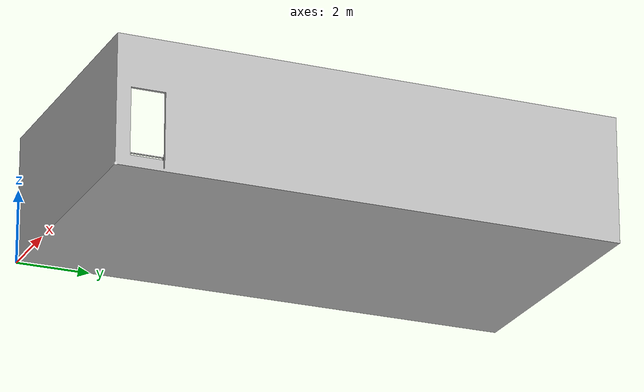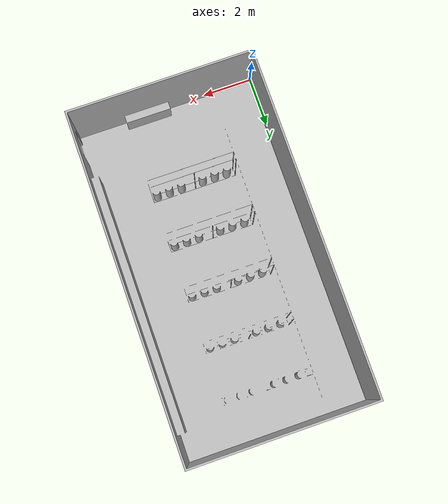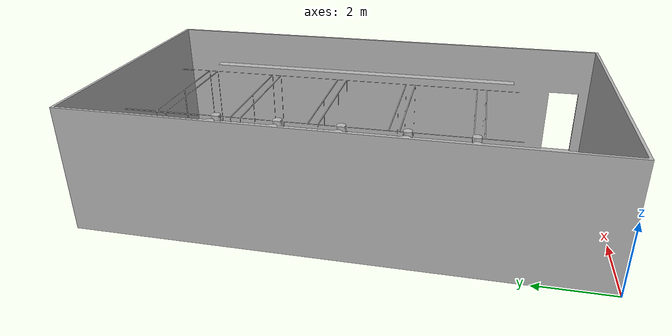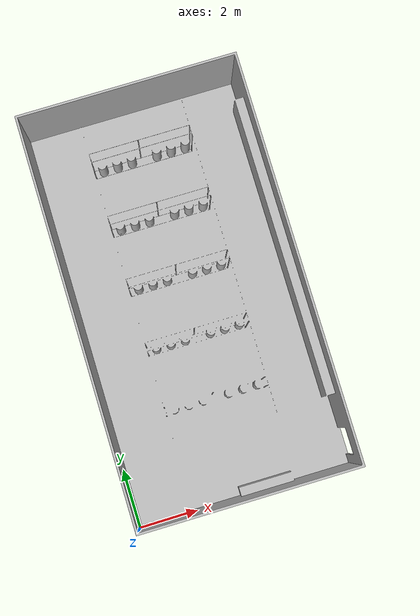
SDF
<?xml version="1.0"?>
<sdf version="1.5">
    <model name="greenhouse-simple">
      <pose>7.35 0 0  0 0 3.141593</pose>
      <static>true</static>
      <link name="body">
        <visual name="visual">
          <geometry>
            <mesh><uri>model://greenhouse-simple/meshes/greenhouse-simple.dae</uri></mesh>
          </geometry>
        </visual>
        <collision name='collision'>
          <geometry>
            <mesh><uri>model://greenhouse-simple/meshes/greenhouse-simple.dae</uri></mesh>
          </geometry>
        </collision>
      </link>
    </model>
</sdf>
